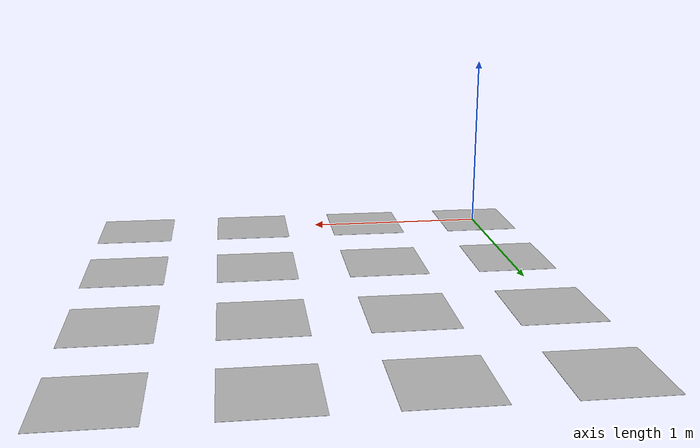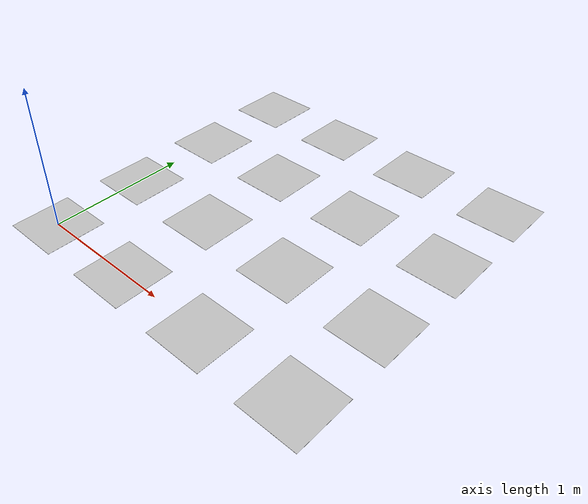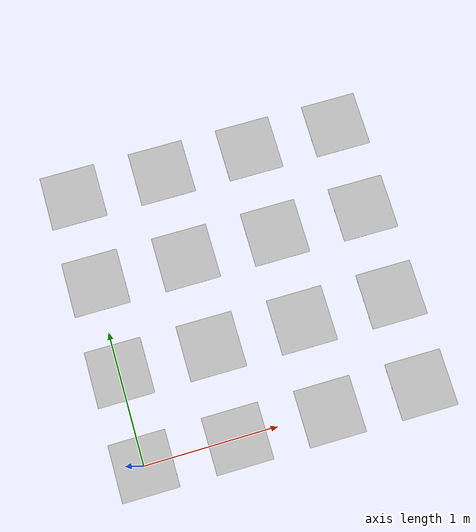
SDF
<?xml version="1.0"?>
<sdf version="1.5">
    <model name="aruco_2_16">
        <static>true</static>
        <link name="aruco_2_16_link">

<visual name="visual_marker_2_52">
    <pose>0.0 2.088 0.0 0.0 0.0 1.57079632679</pose>
    <cast_shadows>false</cast_shadows>
    <geometry>
        <box>
            <size>0.424 0.424 1e-3</size>
        </box>
    </geometry>
    <material>
        <script>
            <uri>model://aruco_shirokaya_1_txt/materials/scripts</uri>
            <uri>model://aruco_shirokaya_1_txt/materials/textures</uri>
            <name>aruco/marker_2_52</name>
        </script>
    </material>
</visual>

<visual name="visual_marker_2_53">
    <pose>0.696 2.088 0.0 0.0 0.0 1.57079632679</pose>
    <cast_shadows>false</cast_shadows>
    <geometry>
        <box>
            <size>0.424 0.424 1e-3</size>
        </box>
    </geometry>
    <material>
        <script>
            <uri>model://aruco_shirokaya_1_txt/materials/scripts</uri>
            <uri>model://aruco_shirokaya_1_txt/materials/textures</uri>
            <name>aruco/marker_2_53</name>
        </script>
    </material>
</visual>

<visual name="visual_marker_2_54">
    <pose>1.392 2.088 0.0 0.0 0.0 1.57079632679</pose>
    <cast_shadows>false</cast_shadows>
    <geometry>
        <box>
            <size>0.424 0.424 1e-3</size>
        </box>
    </geometry>
    <material>
        <script>
            <uri>model://aruco_shirokaya_1_txt/materials/scripts</uri>
            <uri>model://aruco_shirokaya_1_txt/materials/textures</uri>
            <name>aruco/marker_2_54</name>
        </script>
    </material>
</visual>

<visual name="visual_marker_2_55">
    <pose>2.088 2.088 0.0 0.0 0.0 1.57079632679</pose>
    <cast_shadows>false</cast_shadows>
    <geometry>
        <box>
            <size>0.424 0.424 1e-3</size>
        </box>
    </geometry>
    <material>
        <script>
            <uri>model://aruco_shirokaya_1_txt/materials/scripts</uri>
            <uri>model://aruco_shirokaya_1_txt/materials/textures</uri>
            <name>aruco/marker_2_55</name>
        </script>
    </material>
</visual>

<visual name="visual_marker_2_48">
    <pose>0.0 1.392 0.0 0.0 0.0 1.57079632679</pose>
    <cast_shadows>false</cast_shadows>
    <geometry>
        <box>
            <size>0.424 0.424 1e-3</size>
        </box>
    </geometry>
    <material>
        <script>
            <uri>model://aruco_shirokaya_1_txt/materials/scripts</uri>
            <uri>model://aruco_shirokaya_1_txt/materials/textures</uri>
            <name>aruco/marker_2_48</name>
        </script>
    </material>
</visual>

<visual name="visual_marker_2_49">
    <pose>0.696 1.392 0.0 0.0 0.0 1.57079632679</pose>
    <cast_shadows>false</cast_shadows>
    <geometry>
        <box>
            <size>0.424 0.424 1e-3</size>
        </box>
    </geometry>
    <material>
        <script>
            <uri>model://aruco_shirokaya_1_txt/materials/scripts</uri>
            <uri>model://aruco_shirokaya_1_txt/materials/textures</uri>
            <name>aruco/marker_2_49</name>
        </script>
    </material>
</visual>

<visual name="visual_marker_2_50">
    <pose>1.392 1.392 0.0 0.0 0.0 1.57079632679</pose>
    <cast_shadows>false</cast_shadows>
    <geometry>
        <box>
            <size>0.424 0.424 1e-3</size>
        </box>
    </geometry>
    <material>
        <script>
            <uri>model://aruco_shirokaya_1_txt/materials/scripts</uri>
            <uri>model://aruco_shirokaya_1_txt/materials/textures</uri>
            <name>aruco/marker_2_50</name>
        </script>
    </material>
</visual>

<visual name="visual_marker_2_51">
    <pose>2.088 1.392 0.0 0.0 0.0 1.57079632679</pose>
    <cast_shadows>false</cast_shadows>
    <geometry>
        <box>
            <size>0.424 0.424 1e-3</size>
        </box>
    </geometry>
    <material>
        <script>
            <uri>model://aruco_shirokaya_1_txt/materials/scripts</uri>
            <uri>model://aruco_shirokaya_1_txt/materials/textures</uri>
            <name>aruco/marker_2_51</name>
        </script>
    </material>
</visual>

<visual name="visual_marker_2_44">
    <pose>0.0 0.696 0.0 0.0 0.0 1.57079632679</pose>
    <cast_shadows>false</cast_shadows>
    <geometry>
        <box>
            <size>0.424 0.424 1e-3</size>
        </box>
    </geometry>
    <material>
        <script>
            <uri>model://aruco_shirokaya_1_txt/materials/scripts</uri>
            <uri>model://aruco_shirokaya_1_txt/materials/textures</uri>
            <name>aruco/marker_2_44</name>
        </script>
    </material>
</visual>

<visual name="visual_marker_2_45">
    <pose>0.696 0.696 0.0 0.0 0.0 1.57079632679</pose>
    <cast_shadows>false</cast_shadows>
    <geometry>
        <box>
            <size>0.424 0.424 1e-3</size>
        </box>
    </geometry>
    <material>
        <script>
            <uri>model://aruco_shirokaya_1_txt/materials/scripts</uri>
            <uri>model://aruco_shirokaya_1_txt/materials/textures</uri>
            <name>aruco/marker_2_45</name>
        </script>
    </material>
</visual>

<visual name="visual_marker_2_46">
    <pose>1.392 0.696 0.0 0.0 0.0 1.57079632679</pose>
    <cast_shadows>false</cast_shadows>
    <geometry>
        <box>
            <size>0.424 0.424 1e-3</size>
        </box>
    </geometry>
    <material>
        <script>
            <uri>model://aruco_shirokaya_1_txt/materials/scripts</uri>
            <uri>model://aruco_shirokaya_1_txt/materials/textures</uri>
            <name>aruco/marker_2_46</name>
        </script>
    </material>
</visual>

<visual name="visual_marker_2_47">
    <pose>2.088 0.696 0.0 0.0 0.0 1.57079632679</pose>
    <cast_shadows>false</cast_shadows>
    <geometry>
        <box>
            <size>0.424 0.424 1e-3</size>
        </box>
    </geometry>
    <material>
        <script>
            <uri>model://aruco_shirokaya_1_txt/materials/scripts</uri>
            <uri>model://aruco_shirokaya_1_txt/materials/textures</uri>
            <name>aruco/marker_2_47</name>
        </script>
    </material>
</visual>

<visual name="visual_marker_2_40">
    <pose>0.0 0.0 0.0 0.0 0.0 1.57079632679</pose>
    <cast_shadows>false</cast_shadows>
    <geometry>
        <box>
            <size>0.424 0.424 1e-3</size>
        </box>
    </geometry>
    <material>
        <script>
            <uri>model://aruco_shirokaya_1_txt/materials/scripts</uri>
            <uri>model://aruco_shirokaya_1_txt/materials/textures</uri>
            <name>aruco/marker_2_40</name>
        </script>
    </material>
</visual>

<visual name="visual_marker_2_41">
    <pose>0.696 0.0 0.0 0.0 0.0 1.57079632679</pose>
    <cast_shadows>false</cast_shadows>
    <geometry>
        <box>
            <size>0.424 0.424 1e-3</size>
        </box>
    </geometry>
    <material>
        <script>
            <uri>model://aruco_shirokaya_1_txt/materials/scripts</uri>
            <uri>model://aruco_shirokaya_1_txt/materials/textures</uri>
            <name>aruco/marker_2_41</name>
        </script>
    </material>
</visual>

<visual name="visual_marker_2_42">
    <pose>1.392 0.0 0.0 0.0 0.0 1.57079632679</pose>
    <cast_shadows>false</cast_shadows>
    <geometry>
        <box>
            <size>0.424 0.424 1e-3</size>
        </box>
    </geometry>
    <material>
        <script>
            <uri>model://aruco_shirokaya_1_txt/materials/scripts</uri>
            <uri>model://aruco_shirokaya_1_txt/materials/textures</uri>
            <name>aruco/marker_2_42</name>
        </script>
    </material>
</visual>

<visual name="visual_marker_2_43">
    <pose>2.088 0.0 0.0 0.0 0.0 1.57079632679</pose>
    <cast_shadows>false</cast_shadows>
    <geometry>
        <box>
            <size>0.424 0.424 1e-3</size>
        </box>
    </geometry>
    <material>
        <script>
            <uri>model://aruco_shirokaya_1_txt/materials/scripts</uri>
            <uri>model://aruco_shirokaya_1_txt/materials/textures</uri>
            <name>aruco/marker_2_43</name>
        </script>
    </material>
</visual>

        </link>
    </model>
</sdf>
